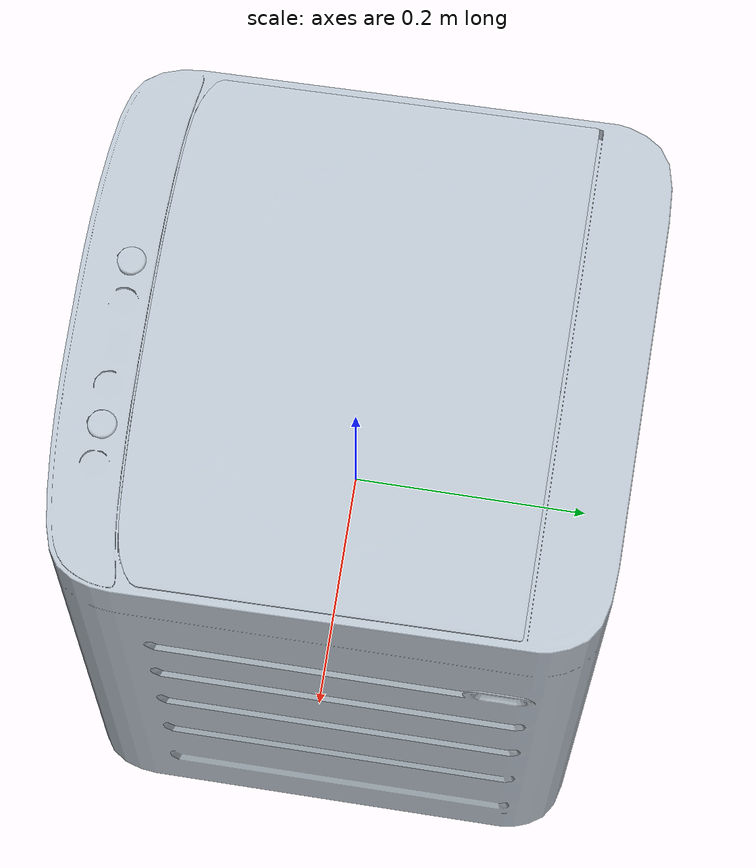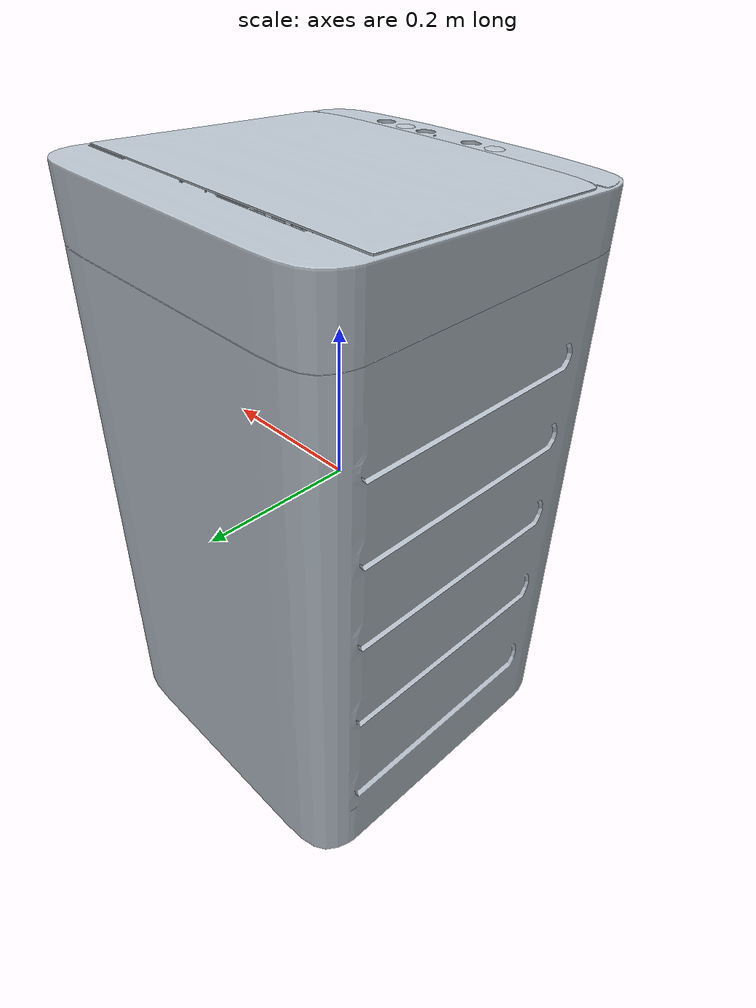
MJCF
<mujoco model="ra_063">
  <compiler angle="radian" meshdir="." />
  <default>
    <geom type="mesh" group="2" contype="0" conaffinity="0" rgba="0.72 0.76 0.80 1" />
  </default>
  <asset>
    <mesh name="body_mesh" file="assets/body.obj" />
    <mesh name="part_00_mesh" file="assets/part_00.obj" />
    <mesh name="part_01_mesh" file="assets/part_01.obj" />
    <mesh name="part_02_mesh" file="assets/part_02.obj" />
  </asset>
  <worldbody>
    <body name="body" pos="0 0 0">
      <geom name="body_visual" mesh="body_mesh" group="2" contype="0" conaffinity="0" />
      <body name="part_00" pos="0 0 0">
        <joint name="part_00" type="hinge" pos="0.0260000005 -0 0.0989999995" axis="0.0871274324 0.00222126452 0.996194698" range="0 0.1" limited="true" />
        <geom name="part_00_visual" mesh="part_00_mesh" group="2" contype="0" conaffinity="0" />
      </body>
      <body name="part_01" pos="0 0 0">
        <joint name="part_01" type="hinge" pos="0.0700000003 -0 0.0399999991" axis="1 0 0" range="-6.10865238 6.28318531" limited="true" />
        <geom name="part_01_visual" mesh="part_01_mesh" group="2" contype="0" conaffinity="0" />
      </body>
      <body name="part_02" pos="0 0 0">
        <joint name="part_02" type="slide" pos="0.0109999999 -0 -0.0540000014" axis="1 0 0" range="0 0.11" limited="true" />
        <geom name="part_02_visual" mesh="part_02_mesh" group="2" contype="0" conaffinity="0" />
      </body>
    </body>
  </worldbody>
</mujoco>
